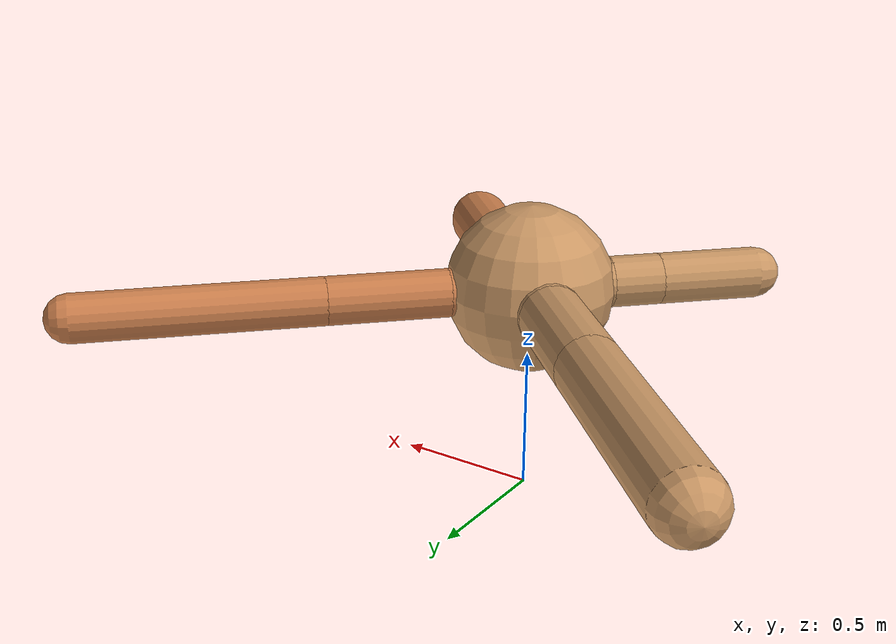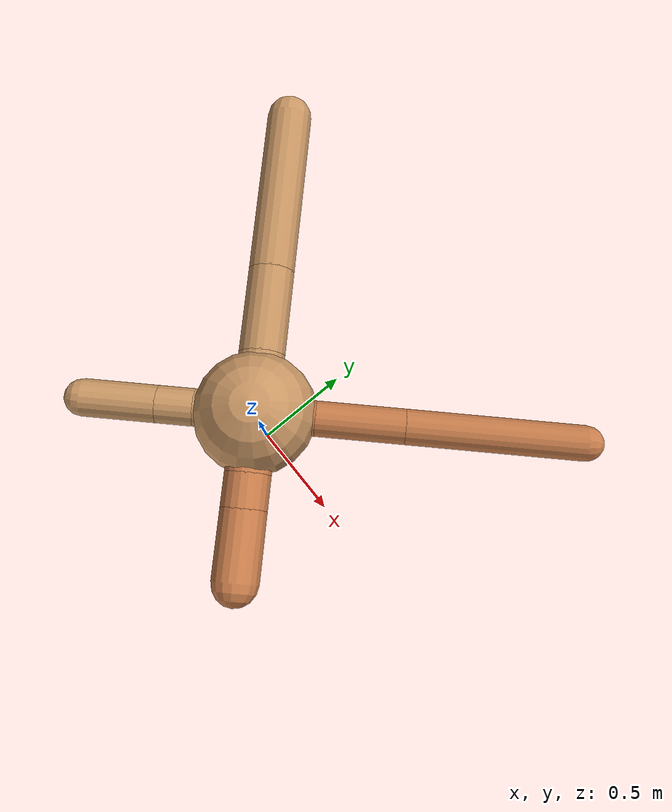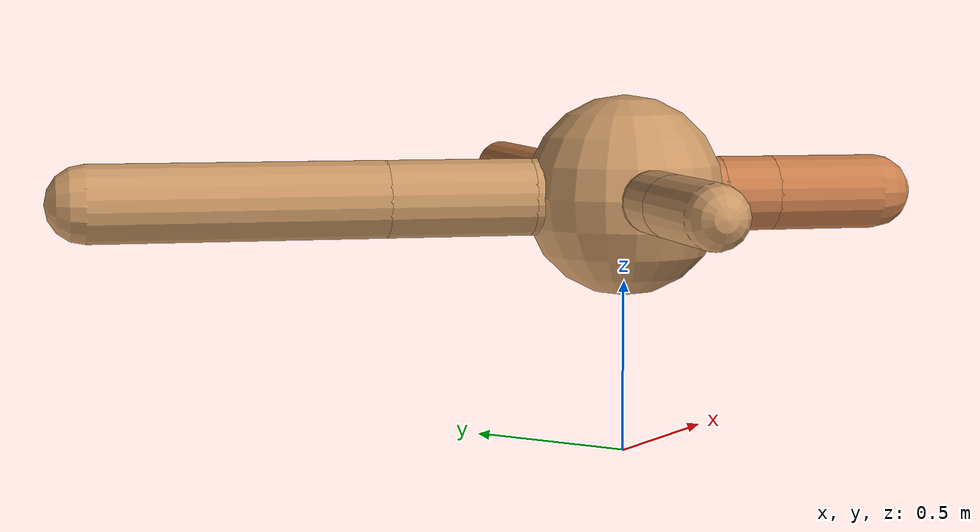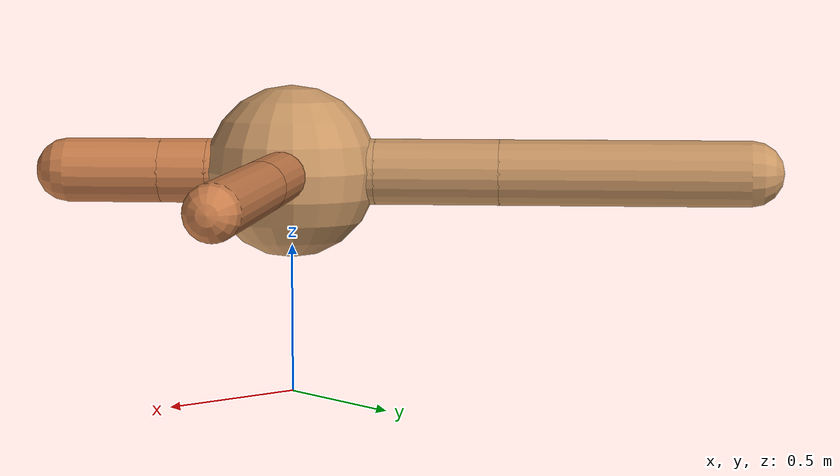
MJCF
<?xml version="1.0" ?>
<mujoco model="ant">

	<compiler angle="degree" coordinate="local" inertiafromgeom="true"/>

	<option integrator="RK4" timestep="0.01"/>

	<custom>

		<numeric data="0.0 0.0 0.55 1.0 0.0 0.0 0.0 0.0 1.0 0.0 -1.0 0.0 -1.0 0.0 1.0" name="init_qpos"/>

	</custom>

	<default>

		<joint armature="1" damping="1" limited="true"/>

		<geom conaffinity="0" condim="3" density="5.0" friction="1.5 0.1 0.1" margin="0.01" rgba="0.8 0.6 0.4 1"/>

	</default>

	<worldbody>

		<body name="torso" pos="0 0 0.75">

			<geom name="torso_geom" pos="0 0 0" size="0.29055212756529947" type="sphere"/>

			<!--joint armature="0" damping="0" limited="false" margin="0.01" name="root" pos="0 0 0" type="free"/-->

			<body name="front_left_leg" pos="0 0 0">

				<geom fromto="0 0 0 0.2 0.2 0" name="aux_1_geom" size="0.08342269895060547" type="capsule" rgba=".8 .5 .3 1"/>

				<body name="aux_1" pos="0.2 0.2 0">

					<joint axis="0 0 1" name="hip_1" pos="0.0 0.0 0.0" range="-40 40" type="hinge"/>

					<geom fromto="0 0 0 0.29566821981210883 0.29566821981210883 0" name="left_leg_geom" size="0.08342269895060547" type="capsule" rgba=".8 .5 .3 1"/>

					<body pos="0.29566821981210883 0.29566821981210883 0" name="front_left_foot">

						<joint axis="-1 1 0" name="ankle_1" pos="0.0 0.0 0.0" range="30 100" type="hinge"/>

						<geom fromto="0 0 0 0.5913364396242177 0.5913364396242177 0" name="left_ankle_geom" size="0.08342269895060547" type="capsule" rgba=".8 .5 .3 1"/>

					</body>

				</body>

			</body>

			<body name="front_right_leg" pos="0 0 0">

				<geom fromto="0 0 0 -0.2 0.2 0" name="aux_2_geom" size="0.11065155225294848" type="capsule"/>

				<body name="aux_2" pos="-0.2 0.2 0">

					<joint axis="0 0 1" name="hip_2" pos="0.0 0.0 0.0" range="-40 40" type="hinge"/>

					<geom fromto="0 0 0 -0.294964680115986 0.294964680115986 0" name="right_leg_geom" size="0.11065155225294848" type="capsule"/>

					<body pos="-0.294964680115986 0.294964680115986 0" name="front_right_foot">

						<joint axis="1 1 0" name="ankle_2" pos="0.0 0.0 0.0" range="-100 -30" type="hinge"/>

						<geom fromto="0 0 0 -0.589929360231972 0.589929360231972 0" name="right_ankle_geom" size="0.11065155225294848" type="capsule"/>

					</body>

				</body>

			</body>

			<body name="left_back_leg" pos="0 0 0">

				<geom fromto="0 0 0 -0.2 -0.2 0" name="aux_3_geom" size="0.08876055785080005" type="capsule"/>

				<body name="aux_3" pos="-0.2 -0.2 0">

					<joint axis="0 0 1" name="hip_3" pos="0.0 0.0 0.0" range="-40 40" type="hinge"/>

					<geom fromto="0 0 0 -0.1238393376967248 -0.1238393376967248 0" name="back_leg_geom" size="0.08876055785080005" type="capsule"/>

					<body pos="-0.1238393376967248 -0.1238393376967248 0" name="left_back_foot">

						<joint axis="-1 1 0" name="ankle_3" pos="0.0 0.0 0.0" range="-100 -30" type="hinge"/>

						<geom fromto="0 0 0 -0.2476786753934496 -0.2476786753934496 0" name="third_ankle_geom" size="0.08876055785080005" type="capsule"/>

					</body>

				</body>

			</body>

			<body name="right_back_leg" pos="0 0 0">

				<geom fromto="0 0 0 0.2 -0.2 0" name="aux_4_geom" size="0.10895036066528108" type="capsule" rgba=".8 .5 .3 1"/>

				<body name="aux_4" pos="0.2 -0.2 0">

					<joint axis="0 0 1" name="hip_4" pos="0.0 0.0 0.0" range="-40 40" type="hinge"/>

					<geom fromto="0 0 0 0.11383502613068353 -0.11383502613068353 0" name="rightback_leg_geom" size="0.10895036066528108" type="capsule" rgba=".8 .5 .3 1"/>

					<body pos="0.11383502613068353 -0.11383502613068353 0" name="right_back_foot">

						<joint axis="1 1 0" name="ankle_4" pos="0.0 0.0 0.0" range="30 100" type="hinge"/>

						<geom fromto="0 0 0 0.22767005226136705 -0.22767005226136705 0" name="fourth_ankle_geom" size="0.10895036066528108" type="capsule" rgba=".8 .5 .3 1"/>

					</body>

				</body>

			</body>

		</body>

	</worldbody>

	<actuator>

		<motor ctrllimited="true" ctrlrange="-1.0 1.0" joint="hip_4" gear="150"/>

		<motor ctrllimited="true" ctrlrange="-1.0 1.0" joint="ankle_4" gear="150"/>

		<motor ctrllimited="true" ctrlrange="-1.0 1.0" joint="hip_1" gear="150"/>

		<motor ctrllimited="true" ctrlrange="-1.0 1.0" joint="ankle_1" gear="150"/>

		<motor ctrllimited="true" ctrlrange="-1.0 1.0" joint="hip_2" gear="150"/>

		<motor ctrllimited="true" ctrlrange="-1.0 1.0" joint="ankle_2" gear="150"/>

		<motor ctrllimited="true" ctrlrange="-1.0 1.0" joint="hip_3" gear="150"/>

		<motor ctrllimited="true" ctrlrange="-1.0 1.0" joint="ankle_3" gear="150"/>

	</actuator>

</mujoco>
